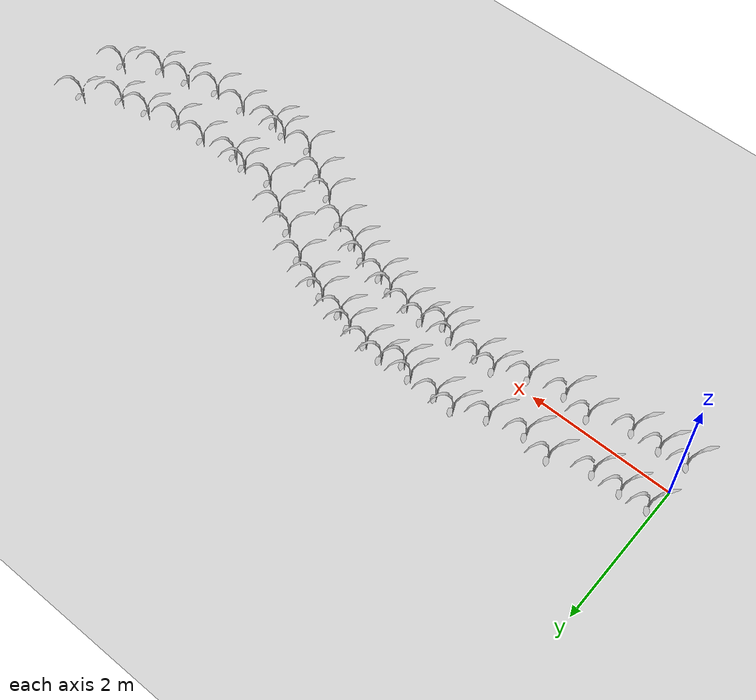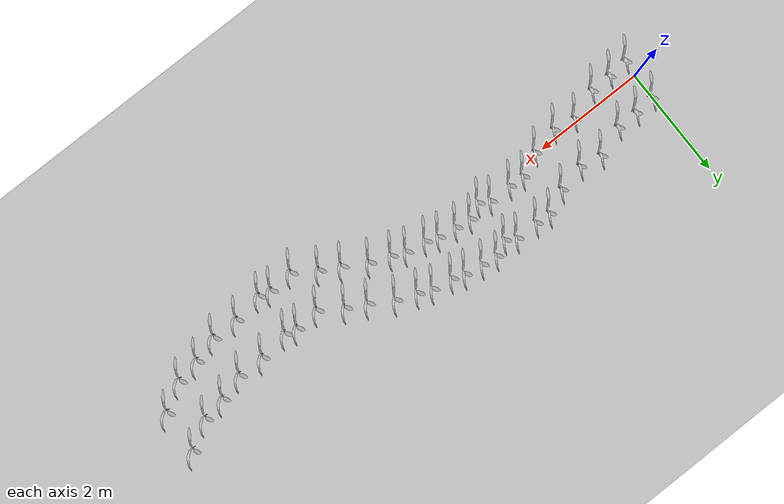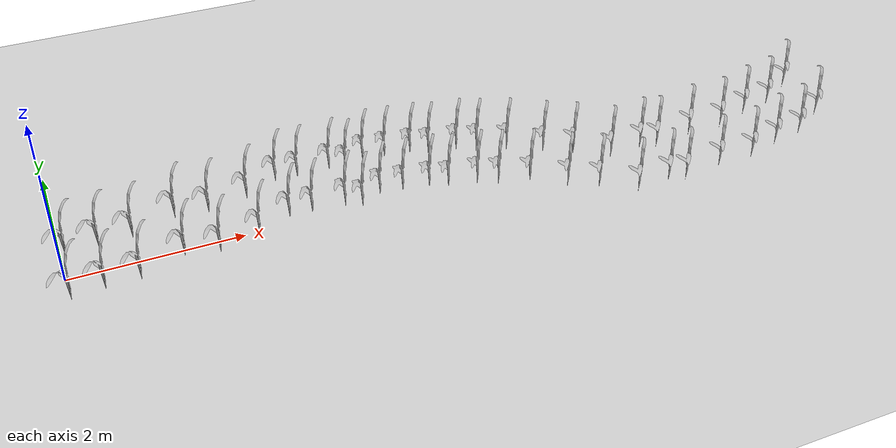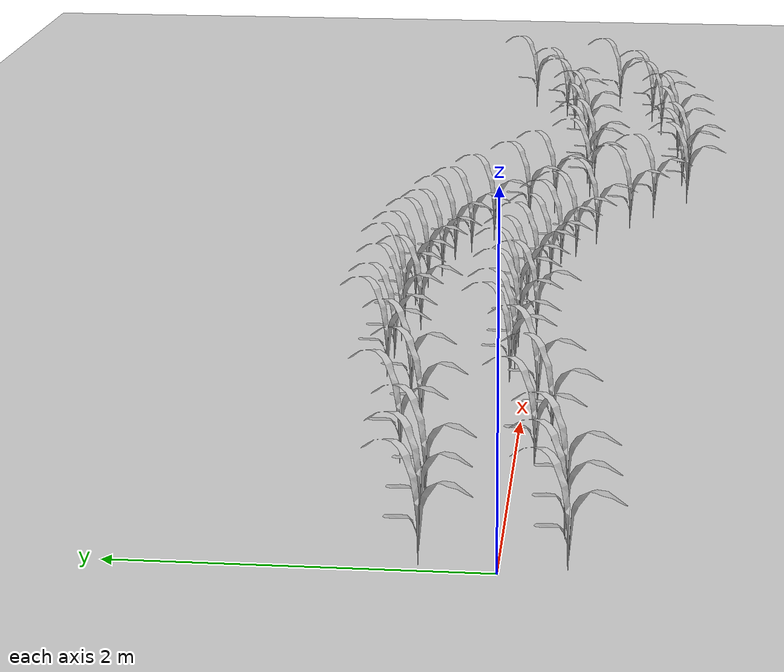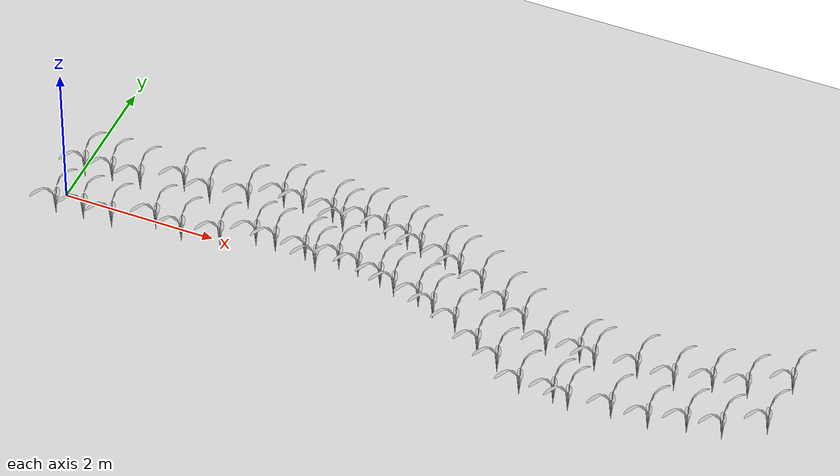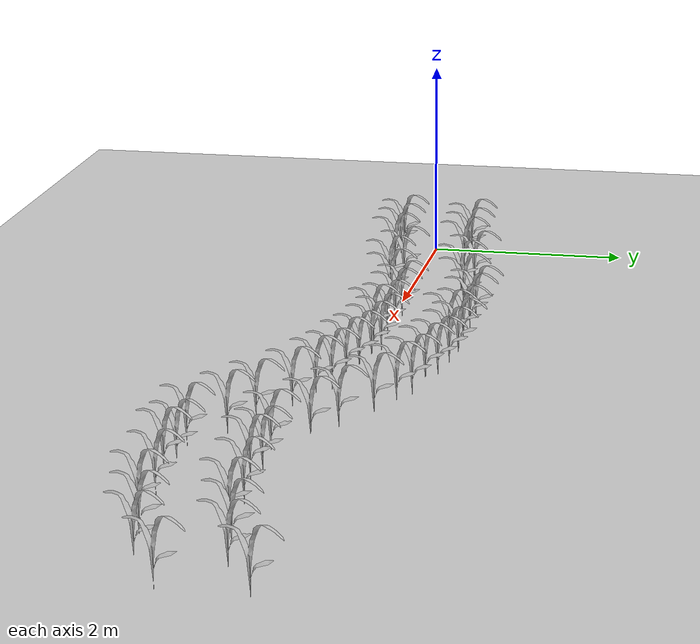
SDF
<sdf version="1.7">
 <world name="default">
  <scene><ambient>0.4 0.4 0.4 1</ambient><background>0.7 0.7 0.7 1</background><shadows>1</shadows></scene>
  <light name="sun" type="directional">
   <pose>0 0 10 0 -0 0</pose>
   <diffuse>0.8 0.8 0.8 1</diffuse>
   <specular>0.2 0.2 0.2 1</specular>
   <attenuation>
    <range>1000</range>
    <constant>0.9</constant>
    <linear>0.01</linear>
    <quadratic>0.001</quadratic>
   </attenuation>
   <direction>-0.5 0.1 -0.9</direction>
   <spot><inner_angle>0</inner_angle><outer_angle>0</outer_angle><falloff>0</falloff></spot>
  </light>
  <model name="ground_plane">
   <static>1</static>
   <link name="link">
    <collision name="collision">
     <geometry><plane><normal>0 0 1</normal><size>100 100</size></plane></geometry>
     <surface>
      <contact><collide_bitmask>65535</collide_bitmask></contact>
      <friction><ode><mu>100</mu><mu2>50</mu2></ode></friction>
     </surface>
    </collision>
    <visual name="visual">
     <cast_shadows>0</cast_shadows>
     <geometry><plane><normal>0 0 1</normal><size>100 100</size></plane></geometry>
     <material>
      <script><uri>file://media/materials/scripts/gazebo.material</uri><name>Gazebo/Grey</name></script>
     </material>
    </visual>
   </link>
  </model>
  <physics type="ode">
   <real_time_update_rate>1000</real_time_update_rate>
   <max_step_size>0.001</max_step_size>
   <real_time_factor>1</real_time_factor>
   <ode>
    <solver>
     <type>quick</type>
     <iters>150</iters>
     <precon_iters>0</precon_iters>
     <sor>1.4</sor>
     <use_dynamic_moi_rescaling>1</use_dynamic_moi_rescaling>
    </solver>
    <constraints>
     <cfm>1e-05</cfm>
     <erp>0.2</erp>
     <contact_max_correcting_vel>2000</contact_max_correcting_vel>
     <contact_surface_layer>0.01</contact_surface_layer>
    </constraints>
   </ode>
  </physics>
  <gravity>0 0 -9.8</gravity>
  <magnetic_field>6e-06 2.3e-05 -4.2e-05</magnetic_field>
  <atmosphere type="adiabatic"/>
  <spherical_coordinates>
   <surface_model>EARTH_WGS84</surface_model>
   <latitude_deg>0</latitude_deg>
   <longitude_deg>0</longitude_deg>
   <elevation>0</elevation>
   <heading_deg>0</heading_deg>
  </spherical_coordinates>
  <model name="maize_row">
   <model name="maize_02">
    <pose>-4.63661 0.027408 0 0 -0 0</pose>
    <link name="maize_02_link">
     <inertial>
      <pose>0 0 0.01 0 -0 0</pose>
      <mass>0.3</mass>
      <inertia>
       <ixx>0.00334167</ixx>
       <ixy>0</ixy>
       <ixz>0</ixz>
       <iyy>0.00334167</iyy>
       <iyz>0</iyz>
       <izz>1.66667e-05</izz>
      </inertia>
      <pose>0 0 0.1 0 -0 0</pose>
     </inertial>
     <collision name="collision">
      <pose>0 0 0.2 0 -0 0</pose>
      <geometry><box><size>0.02 0.02 0.4</size></box></geometry>
      <surface><friction><ode><mu>10</mu><mu2>10</mu2></ode></friction></surface>
     </collision>
     <visual name="visual">
      <geometry>
       <mesh><uri>model://maize_02/meshes/maize_02.dae</uri><scale>0.683166 0.683166 0.683166</scale></mesh>
      </geometry>
     </visual>
    </link>
   </model>
   <model name="maize_02_clone">
    <pose>-4.27241 0.05616 0 0 -0 0</pose>
    <link name="maize_02_link">
     <inertial>
      <pose>0 0 0.01 0 -0 0</pose>
      <mass>0.3</mass>
      <inertia>
       <ixx>0.00334167</ixx>
       <ixy>0</ixy>
       <ixz>0</ixz>
       <iyy>0.00334167</iyy>
       <iyz>0</iyz>
       <izz>1.66667e-05</izz>
      </inertia>
      <pose>0 0 0.1 0 -0 0</pose>
     </inertial>
     <collision name="collision">
      <pose>0 0 0.2 0 -0 0</pose>
      <geometry><box><size>0.02 0.02 0.4</size></box></geometry>
      <surface><friction><ode><mu>10</mu><mu2>10</mu2></ode></friction></surface>
     </collision>
     <visual name="visual">
      <geometry>
       <mesh><uri>model://maize_02/meshes/maize_02.dae</uri><scale>0.683166 0.683166 0.683166</scale></mesh>
      </geometry>
     </visual>
    </link>
   </model>
   <model name="maize_02_clone_0">
    <pose>-3.88904 0.065744 0 0 -0 0</pose>
    <link name="maize_02_link">
     <inertial>
      <pose>0 0 0.01 0 -0 0</pose>
      <mass>0.3</mass>
      <inertia>
       <ixx>0.00334167</ixx>
       <ixy>0</ixy>
       <ixz>0</ixz>
       <iyy>0.00334167</iyy>
       <iyz>0</iyz>
       <izz>1.66667e-05</izz>
      </inertia>
      <pose>0 0 0.1 0 -0 0</pose>
     </inertial>
     <collision name="collision">
      <pose>0 0 0.2 0 -0 0</pose>
      <geometry><box><size>0.02 0.02 0.4</size></box></geometry>
      <surface><friction><ode><mu>10</mu><mu2>10</mu2></ode></friction></surface>
     </collision>
     <visual name="visual">
      <geometry>
       <mesh><uri>model://maize_02/meshes/maize_02.dae</uri><scale>0.683166 0.683166 0.683166</scale></mesh>
      </geometry>
     </visual>
    </link>
   </model>
   <model name="maize_02_clone_1">
    <pose>-3.37149 0.257428 0 0 -0 0</pose>
    <link name="maize_02_link">
     <inertial>
      <pose>0 0 0.01 0 -0 0</pose>
      <mass>0.3</mass>
      <inertia>
       <ixx>0.00334167</ixx>
       <ixy>0</ixy>
       <ixz>0</ixz>
       <iyy>0.00334167</iyy>
       <iyz>0</iyz>
       <izz>1.66667e-05</izz>
      </inertia>
      <pose>0 0 0.1 0 -0 0</pose>
     </inertial>
     <collision name="collision">
      <pose>0 0 0.2 0 -0 0</pose>
      <geometry><box><size>0.02 0.02 0.4</size></box></geometry>
      <surface><friction><ode><mu>10</mu><mu2>10</mu2></ode></friction></surface>
     </collision>
     <visual name="visual">
      <geometry>
       <mesh><uri>model://maize_02/meshes/maize_02.dae</uri><scale>0.683166 0.683166 0.683166</scale></mesh>
      </geometry>
     </visual>
    </link>
   </model>
   <model name="maize_02_clone_10">
    <pose>-0.393317 0.390237 0 0 -0 0</pose>
    <link name="maize_02_link">
     <inertial>
      <pose>0 0 0.01 0 -0 0</pose>
      <mass>0.3</mass>
      <inertia>
       <ixx>0.00334167</ixx>
       <ixy>0</ixy>
       <ixz>0</ixz>
       <iyy>0.00334167</iyy>
       <iyz>0</iyz>
       <izz>1.66667e-05</izz>
      </inertia>
      <pose>0 0 0.1 0 -0 0</pose>
     </inertial>
     <collision name="collision">
      <pose>0 0 0.2 0 -0 0</pose>
      <geometry><box><size>0.02 0.02 0.4</size></box></geometry>
      <surface><friction><ode><mu>10</mu><mu2>10</mu2></ode></friction></surface>
     </collision>
     <visual name="visual">
      <geometry>
       <mesh><uri>model://maize_02/meshes/maize_02.dae</uri><scale>0.683166 0.683166 0.683166</scale></mesh>
      </geometry>
     </visual>
    </link>
   </model>
   <model name="maize_02_clone_11">
    <pose>0.410873 0.154867 0 0 -0 0</pose>
    <link name="maize_02_link">
     <inertial>
      <pose>0 0 0.01 0 -0 0</pose>
      <mass>0.3</mass>
      <inertia>
       <ixx>0.00334167</ixx>
       <ixy>0</ixy>
       <ixz>0</ixz>
       <iyy>0.00334167</iyy>
       <iyz>0</iyz>
       <izz>1.66667e-05</izz>
      </inertia>
      <pose>0 0 0.1 0 -0 0</pose>
     </inertial>
     <collision name="collision">
      <pose>0 0 0.2 0 -0 0</pose>
      <geometry><box><size>0.02 0.02 0.4</size></box></geometry>
      <surface><friction><ode><mu>10</mu><mu2>10</mu2></ode></friction></surface>
     </collision>
     <visual name="visual">
      <geometry>
       <mesh><uri>model://maize_02/meshes/maize_02.dae</uri><scale>0.683166 0.683166 0.683166</scale></mesh>
      </geometry>
     </visual>
    </link>
   </model>
   <model name="maize_02_clone_12">
    <pose>0.175502 0.252945 0 0 -0 0</pose>
    <link name="maize_02_link">
     <inertial>
      <pose>0 0 0.01 0 -0 0</pose>
      <mass>0.3</mass>
      <inertia>
       <ixx>0.00334167</ixx>
       <ixy>0</ixy>
       <ixz>0</ixz>
       <iyy>0.00334167</iyy>
       <iyz>0</iyz>
       <izz>1.66667e-05</izz>
      </inertia>
      <pose>0 0 0.1 0 -0 0</pose>
     </inertial>
     <collision name="collision">
      <pose>0 0 0.2 0 -0 0</pose>
      <geometry><box><size>0.02 0.02 0.4</size></box></geometry>
      <surface><friction><ode><mu>10</mu><mu2>10</mu2></ode></friction></surface>
     </collision>
     <visual name="visual">
      <geometry>
       <mesh><uri>model://maize_02/meshes/maize_02.dae</uri><scale>0.683166 0.683166 0.683166</scale></mesh>
      </geometry>
     </visual>
    </link>
   </model>
   <model name="maize_02_clone_13">
    <pose>0.76395 0.017569 0 0 -0 0</pose>
    <link name="maize_02_link">
     <inertial>
      <pose>0 0 0.01 0 -0 0</pose>
      <mass>0.3</mass>
      <inertia>
       <ixx>0.00334167</ixx>
       <ixy>0</ixy>
       <ixz>0</ixz>
       <iyy>0.00334167</iyy>
       <iyz>0</iyz>
       <izz>1.66667e-05</izz>
      </inertia>
      <pose>0 0 0.1 0 -0 0</pose>
     </inertial>
     <collision name="collision">
      <pose>0 0 0.2 0 -0 0</pose>
      <geometry><box><size>0.02 0.02 0.4</size></box></geometry>
      <surface><friction><ode><mu>10</mu><mu2>10</mu2></ode></friction></surface>
     </collision>
     <visual name="visual">
      <geometry>
       <mesh><uri>model://maize_02/meshes/maize_02.dae</uri><scale>0.683166 0.683166 0.683166</scale></mesh>
      </geometry>
     </visual>
    </link>
   </model>
   <model name="maize_02_clone_14">
    <pose>1.15624 -0.217806 0 0 -0 0</pose>
    <link name="maize_02_link">
     <inertial>
      <pose>0 0 0.01 0 -0 0</pose>
      <mass>0.3</mass>
      <inertia>
       <ixx>0.00334167</ixx>
       <ixy>0</ixy>
       <ixz>0</ixz>
       <iyy>0.00334167</iyy>
       <iyz>0</iyz>
       <izz>1.66667e-05</izz>
      </inertia>
      <pose>0 0 0.1 0 -0 0</pose>
     </inertial>
     <collision name="collision">
      <pose>0 0 0.2 0 -0 0</pose>
      <geometry><box><size>0.02 0.02 0.4</size></box></geometry>
      <surface><friction><ode><mu>10</mu><mu2>10</mu2></ode></friction></surface>
     </collision>
     <visual name="visual">
      <geometry>
       <mesh><uri>model://maize_02/meshes/maize_02.dae</uri><scale>0.683166 0.683166 0.683166</scale></mesh>
      </geometry>
     </visual>
    </link>
   </model>
   <model name="maize_02_clone_15">
    <pose>1.48967 -0.39434 0 0 -0 0</pose>
    <link name="maize_02_link">
     <inertial>
      <pose>0 0 0.01 0 -0 0</pose>
      <mass>0.3</mass>
      <inertia>
       <ixx>0.00334167</ixx>
       <ixy>0</ixy>
       <ixz>0</ixz>
       <iyy>0.00334167</iyy>
       <iyz>0</iyz>
       <izz>1.66667e-05</izz>
      </inertia>
      <pose>0 0 0.1 0 -0 0</pose>
     </inertial>
     <collision name="collision">
      <pose>0 0 0.2 0 -0 0</pose>
      <geometry><box><size>0.02 0.02 0.4</size></box></geometry>
      <surface><friction><ode><mu>10</mu><mu2>10</mu2></ode></friction></surface>
     </collision>
     <visual name="visual">
      <geometry>
       <mesh><uri>model://maize_02/meshes/maize_02.dae</uri><scale>0.683166 0.683166 0.683166</scale></mesh>
      </geometry>
     </visual>
    </link>
   </model>
   <model name="maize_02_clone_16">
    <pose>1.88196 -0.649333 0 0 -0 0</pose>
    <link name="maize_02_link">
     <inertial>
      <pose>0 0 0.01 0 -0 0</pose>
      <mass>0.3</mass>
      <inertia>
       <ixx>0.00334167</ixx>
       <ixy>0</ixy>
       <ixz>0</ixz>
       <iyy>0.00334167</iyy>
       <iyz>0</iyz>
       <izz>1.66667e-05</izz>
      </inertia>
      <pose>0 0 0.1 0 -0 0</pose>
     </inertial>
     <collision name="collision">
      <pose>0 0 0.2 0 -0 0</pose>
      <geometry><box><size>0.02 0.02 0.4</size></box></geometry>
      <surface><friction><ode><mu>10</mu><mu2>10</mu2></ode></friction></surface>
     </collision>
     <visual name="visual">
      <geometry>
       <mesh><uri>model://maize_02/meshes/maize_02.dae</uri><scale>0.683166 0.683166 0.683166</scale></mesh>
      </geometry>
     </visual>
    </link>
   </model>
   <model name="maize_02_clone_17">
    <pose>2.52627 -0.672048 0 0 -0 0</pose>
    <link name="maize_02_link">
     <inertial>
      <pose>0 0 0.01 0 -0 0</pose>
      <mass>0.3</mass>
      <inertia>
       <ixx>0.00334167</ixx>
       <ixy>0</ixy>
       <ixz>0</ixz>
       <iyy>0.00334167</iyy>
       <iyz>0</iyz>
       <izz>1.66667e-05</izz>
      </inertia>
      <pose>0 0 0.1 0 -0 0</pose>
     </inertial>
     <collision name="collision">
      <pose>0 0 0.2 0 -0 0</pose>
      <geometry><box><size>0.02 0.02 0.4</size></box></geometry>
      <surface><friction><ode><mu>10</mu><mu2>10</mu2></ode></friction></surface>
     </collision>
     <visual name="visual">
      <geometry>
       <mesh><uri>model://maize_02/meshes/maize_02.dae</uri><scale>0.683166 0.683166 0.683166</scale></mesh>
      </geometry>
     </visual>
    </link>
   </model>
   <model name="maize_02_clone_18">
    <pose>2.3152 -0.619273 0 0 -0 0</pose>
    <link name="maize_02_link">
     <inertial>
      <pose>0 0 0.01 0 -0 0</pose>
      <mass>0.3</mass>
      <inertia>
       <ixx>0.00334167</ixx>
       <ixy>0</ixy>
       <ixz>0</ixz>
       <iyy>0.00334167</iyy>
       <iyz>0</iyz>
       <izz>1.66667e-05</izz>
      </inertia>
      <pose>0 0 0.1 0 -0 0</pose>
     </inertial>
     <collision name="collision">
      <pose>0 0 0.2 0 -0 0</pose>
      <geometry><box><size>0.02 0.02 0.4</size></box></geometry>
      <surface><friction><ode><mu>10</mu><mu2>10</mu2></ode></friction></surface>
     </collision>
     <visual name="visual">
      <geometry>
       <mesh><uri>model://maize_02/meshes/maize_02.dae</uri><scale>0.683166 0.683166 0.683166</scale></mesh>
      </geometry>
     </visual>
    </link>
   </model>
   <model name="maize_02_clone_19">
    <pose>3.05425 -0.592874 0 0 -0 0</pose>
    <link name="maize_02_link">
     <inertial>
      <pose>0 0 0.01 0 -0 0</pose>
      <mass>0.3</mass>
      <inertia>
       <ixx>0.00334167</ixx>
       <ixy>0</ixy>
       <ixz>0</ixz>
       <iyy>0.00334167</iyy>
       <iyz>0</iyz>
       <izz>1.66667e-05</izz>
      </inertia>
      <pose>0 0 0.1 0 -0 0</pose>
     </inertial>
     <collision name="collision">
      <pose>0 0 0.2 0 -0 0</pose>
      <geometry><box><size>0.02 0.02 0.4</size></box></geometry>
      <surface><friction><ode><mu>10</mu><mu2>10</mu2></ode></friction></surface>
     </collision>
     <visual name="visual">
      <geometry>
       <mesh><uri>model://maize_02/meshes/maize_02.dae</uri><scale>0.683166 0.683166 0.683166</scale></mesh>
      </geometry>
     </visual>
    </link>
   </model>
   <model name="maize_02_clone_2">
    <pose>-2.98813 0.180754 0 0 -0 0</pose>
    <link name="maize_02_link">
     <inertial>
      <pose>0 0 0.01 0 -0 0</pose>
      <mass>0.3</mass>
      <inertia>
       <ixx>0.00334167</ixx>
       <ixy>0</ixy>
       <ixz>0</ixz>
       <iyy>0.00334167</iyy>
       <iyz>0</iyz>
       <izz>1.66667e-05</izz>
      </inertia>
      <pose>0 0 0.1 0 -0 0</pose>
     </inertial>
     <collision name="collision">
      <pose>0 0 0.2 0 -0 0</pose>
      <geometry><box><size>0.02 0.02 0.4</size></box></geometry>
      <surface><friction><ode><mu>10</mu><mu2>10</mu2></ode></friction></surface>
     </collision>
     <visual name="visual">
      <geometry>
       <mesh><uri>model://maize_02/meshes/maize_02.dae</uri><scale>0.683166 0.683166 0.683166</scale></mesh>
      </geometry>
     </visual>
    </link>
   </model>
   <model name="maize_02_clone_20">
    <pose>3.5294 -0.592874 0 0 -0 0</pose>
    <link name="maize_02_link">
     <inertial>
      <pose>0 0 0.01 0 -0 0</pose>
      <mass>0.3</mass>
      <inertia>
       <ixx>0.00334167</ixx>
       <ixy>0</ixy>
       <ixz>0</ixz>
       <iyy>0.00334167</iyy>
       <iyz>0</iyz>
       <izz>1.66667e-05</izz>
      </inertia>
      <pose>0 0 0.1 0 -0 0</pose>
     </inertial>
     <collision name="collision">
      <pose>0 0 0.2 0 -0 0</pose>
      <geometry><box><size>0.02 0.02 0.4</size></box></geometry>
      <surface><friction><ode><mu>10</mu><mu2>10</mu2></ode></friction></surface>
     </collision>
     <visual name="visual">
      <geometry>
       <mesh><uri>model://maize_02/meshes/maize_02.dae</uri><scale>0.683166 0.683166 0.683166</scale></mesh>
      </geometry>
     </visual>
    </link>
   </model>
   <model name="maize_02_clone_21">
    <pose>3.97801 -0.460902 0 0 -0 0</pose>
    <link name="maize_02_link">
     <inertial>
      <pose>0 0 0.01 0 -0 0</pose>
      <mass>0.3</mass>
      <inertia>
       <ixx>0.00334167</ixx>
       <ixy>0</ixy>
       <ixz>0</ixz>
       <iyy>0.00334167</iyy>
       <iyz>0</iyz>
       <izz>1.66667e-05</izz>
      </inertia>
      <pose>0 0 0.1 0 -0 0</pose>
     </inertial>
     <collision name="collision">
      <pose>0 0 0.2 0 -0 0</pose>
      <geometry><box><size>0.02 0.02 0.4</size></box></geometry>
      <surface><friction><ode><mu>10</mu><mu2>10</mu2></ode></friction></surface>
     </collision>
     <visual name="visual">
      <geometry>
       <mesh><uri>model://maize_02/meshes/maize_02.dae</uri><scale>0.683166 0.683166 0.683166</scale></mesh>
      </geometry>
     </visual>
    </link>
   </model>
   <model name="maize_02_clone_22">
    <pose>4.40033 -0.381713 0 0 -0 0</pose>
    <link name="maize_02_link">
     <inertial>
      <pose>0 0 0.01 0 -0 0</pose>
      <mass>0.3</mass>
      <inertia>
       <ixx>0.00334167</ixx>
       <ixy>0</ixy>
       <ixz>0</ixz>
       <iyy>0.00334167</iyy>
       <iyz>0</iyz>
       <izz>1.66667e-05</izz>
      </inertia>
      <pose>0 0 0.1 0 -0 0</pose>
     </inertial>
     <collision name="collision">
      <pose>0 0 0.2 0 -0 0</pose>
      <geometry><box><size>0.02 0.02 0.4</size></box></geometry>
      <surface><friction><ode><mu>10</mu><mu2>10</mu2></ode></friction></surface>
     </collision>
     <visual name="visual">
      <geometry>
       <mesh><uri>model://maize_02/meshes/maize_02.dae</uri><scale>0.683166 0.683166 0.683166</scale></mesh>
      </geometry>
     </visual>
    </link>
   </model>
   <model name="maize_02_clone_23">
    <pose>4.87542 -0.091378 0 0 -0 0</pose>
    <link name="maize_02_link">
     <inertial>
      <pose>0 0 0.01 0 -0 0</pose>
      <mass>0.3</mass>
      <inertia>
       <ixx>0.00334167</ixx>
       <ixy>0</ixy>
       <ixz>0</ixz>
       <iyy>0.00334167</iyy>
       <iyz>0</iyz>
       <izz>1.66667e-05</izz>
      </inertia>
      <pose>0 0 0.1 0 -0 0</pose>
     </inertial>
     <collision name="collision">
      <pose>0 0 0.2 0 -0 0</pose>
      <geometry><box><size>0.02 0.02 0.4</size></box></geometry>
      <surface><friction><ode><mu>10</mu><mu2>10</mu2></ode></friction></surface>
     </collision>
     <visual name="visual">
      <geometry>
       <mesh><uri>model://maize_02/meshes/maize_02.dae</uri><scale>0.683166 0.683166 0.683166</scale></mesh>
      </geometry>
     </visual>
    </link>
   </model>
   <model name="maize_02_clone_24">
    <pose>-0.987177 0.483854 0 0 -0 0</pose>
    <link name="maize_02_link">
     <inertial>
      <pose>0 0 0.01 0 -0 0</pose>
      <mass>0.3</mass>
      <inertia>
       <ixx>0.00334167</ixx>
       <ixy>0</ixy>
       <ixz>0</ixz>
       <iyy>0.00334167</iyy>
       <iyz>0</iyz>
       <izz>1.66667e-05</izz>
      </inertia>
      <pose>0 0 0.1 0 -0 0</pose>
     </inertial>
     <collision name="collision">
      <pose>0 0 0.2 0 -0 0</pose>
      <geometry><box><size>0.02 0.02 0.4</size></box></geometry>
      <surface><friction><ode><mu>10</mu><mu2>10</mu2></ode></friction></surface>
     </collision>
     <visual name="visual">
      <geometry>
       <mesh><uri>model://maize_02/meshes/maize_02.dae</uri><scale>0.683166 0.683166 0.683166</scale></mesh>
      </geometry>
     </visual>
    </link>
   </model>
   <model name="maize_02_clone_3">
    <pose>-2.50892 0.28618 0 0 -0 0</pose>
    <link name="maize_02_link">
     <inertial>
      <pose>0 0 0.01 0 -0 0</pose>
      <mass>0.3</mass>
      <inertia>
       <ixx>0.00334167</ixx>
       <ixy>0</ixy>
       <ixz>0</ixz>
       <iyy>0.00334167</iyy>
       <iyz>0</iyz>
       <izz>1.66667e-05</izz>
      </inertia>
      <pose>0 0 0.1 0 -0 0</pose>
     </inertial>
     <collision name="collision">
      <pose>0 0 0.2 0 -0 0</pose>
      <geometry><box><size>0.02 0.02 0.4</size></box></geometry>
      <surface><friction><ode><mu>10</mu><mu2>10</mu2></ode></friction></surface>
     </collision>
     <visual name="visual">
      <geometry>
       <mesh><uri>model://maize_02/meshes/maize_02.dae</uri><scale>0.683166 0.683166 0.683166</scale></mesh>
      </geometry>
     </visual>
    </link>
   </model>
   <model name="maize_02_clone_4">
    <pose>-1.83451 0.458469 0 0 -0 0</pose>
    <link name="maize_02_link">
     <inertial>
      <pose>0 0 0.01 0 -0 0</pose>
      <mass>0.3</mass>
      <inertia>
       <ixx>0.00334167</ixx>
       <ixy>0</ixy>
       <ixz>0</ixz>
       <iyy>0.00334167</iyy>
       <iyz>0</iyz>
       <izz>1.66667e-05</izz>
      </inertia>
      <pose>0 0 0.1 0 -0 0</pose>
     </inertial>
     <collision name="collision">
      <pose>0 0 0.2 0 -0 0</pose>
      <geometry><box><size>0.02 0.02 0.4</size></box></geometry>
      <surface><friction><ode><mu>10</mu><mu2>10</mu2></ode></friction></surface>
     </collision>
     <visual name="visual">
      <geometry>
       <mesh><uri>model://maize_02/meshes/maize_02.dae</uri><scale>0.683166 0.683166 0.683166</scale></mesh>
      </geometry>
     </visual>
    </link>
   </model>
   <model name="maize_02_clone_5">
    <pose>-1.25106 0.353746 0 0 -0 0</pose>
    <link name="maize_02_link">
     <inertial>
      <pose>0 0 0.01 0 -0 0</pose>
      <mass>0.3</mass>
      <inertia>
       <ixx>0.00334167</ixx>
       <ixy>0</ixy>
       <ixz>0</ixz>
       <iyy>0.00334167</iyy>
       <iyz>0</iyz>
       <izz>1.66667e-05</izz>
      </inertia>
      <pose>0 0 0.1 0 -0 0</pose>
     </inertial>
     <collision name="collision">
      <pose>0 0 0.2 0 -0 0</pose>
      <geometry><box><size>0.02 0.02 0.4</size></box></geometry>
      <surface><friction><ode><mu>10</mu><mu2>10</mu2></ode></friction></surface>
     </collision>
     <visual name="visual">
      <geometry>
       <mesh><uri>model://maize_02/meshes/maize_02.dae</uri><scale>0.683166 0.683166 0.683166</scale></mesh>
      </geometry>
     </visual>
    </link>
   </model>
   <model name="maize_02_clone_6">
    <pose>-1.43059 0.458469 0 0 -0 0</pose>
    <link name="maize_02_link">
     <inertial>
      <pose>0 0 0.01 0 -0 0</pose>
      <mass>0.3</mass>
      <inertia>
       <ixx>0.00334167</ixx>
       <ixy>0</ixy>
       <ixz>0</ixz>
       <iyy>0.00334167</iyy>
       <iyz>0</iyz>
       <izz>1.66667e-05</izz>
      </inertia>
      <pose>0 0 0.1 0 -0 0</pose>
     </inertial>
     <collision name="collision">
      <pose>0 0 0.2 0 -0 0</pose>
      <geometry><box><size>0.02 0.02 0.4</size></box></geometry>
      <surface><friction><ode><mu>10</mu><mu2>10</mu2></ode></friction></surface>
     </collision>
     <visual name="visual">
      <geometry>
       <mesh><uri>model://maize_02/meshes/maize_02.dae</uri><scale>0.683166 0.683166 0.683166</scale></mesh>
      </geometry>
     </visual>
    </link>
   </model>
   <model name="maize_02_clone_7">
    <pose>-2.10378 0.473427 0 0 -0 0</pose>
    <link name="maize_02_link">
     <inertial>
      <pose>0 0 0.01 0 -0 0</pose>
      <mass>0.3</mass>
      <inertia>
       <ixx>0.00334167</ixx>
       <ixy>0</ixy>
       <ixz>0</ixz>
       <iyy>0.00334167</iyy>
       <iyz>0</iyz>
       <izz>1.66667e-05</izz>
      </inertia>
      <pose>0 0 0.1 0 -0 0</pose>
     </inertial>
     <collision name="collision">
      <pose>0 0 0.2 0 -0 0</pose>
      <geometry><box><size>0.02 0.02 0.4</size></box></geometry>
      <surface><friction><ode><mu>10</mu><mu2>10</mu2></ode></friction></surface>
     </collision>
     <visual name="visual">
      <geometry>
       <mesh><uri>model://maize_02/meshes/maize_02.dae</uri><scale>0.683166 0.683166 0.683166</scale></mesh>
      </geometry>
     </visual>
    </link>
   </model>
   <model name="maize_02_clone_8">
    <pose>-0.712516 0.443508 0 0 -0 0</pose>
    <link name="maize_02_link">
     <inertial>
      <pose>0 0 0.01 0 -0 0</pose>
      <mass>0.3</mass>
      <inertia>
       <ixx>0.00334167</ixx>
       <ixy>0</ixy>
       <ixz>0</ixz>
       <iyy>0.00334167</iyy>
       <iyz>0</iyz>
       <izz>1.66667e-05</izz>
      </inertia>
      <pose>0 0 0.1 0 -0 0</pose>
     </inertial>
     <collision name="collision">
      <pose>0 0 0.2 0 -0 0</pose>
      <geometry><box><size>0.02 0.02 0.4</size></box></geometry>
      <surface><friction><ode><mu>10</mu><mu2>10</mu2></ode></friction></surface>
     </collision>
     <visual name="visual">
      <geometry>
       <mesh><uri>model://maize_02/meshes/maize_02.dae</uri><scale>0.683166 0.683166 0.683166</scale></mesh>
      </geometry>
     </visual>
    </link>
   </model>
   <model name="maize_02_clone_9">
    <pose>-0.177553 0.311777 0 0 -0 0</pose>
    <link name="maize_02_link">
     <inertial>
      <pose>0 0 0.01 0 -0 0</pose>
      <mass>0.3</mass>
      <inertia>
       <ixx>0.00334167</ixx>
       <ixy>0</ixy>
       <ixz>0</ixz>
       <iyy>0.00334167</iyy>
       <iyz>0</iyz>
       <izz>1.66667e-05</izz>
      </inertia>
      <pose>0 0 0.1 0 -0 0</pose>
     </inertial>
     <collision name="collision">
      <pose>0 0 0.2 0 -0 0</pose>
      <geometry><box><size>0.02 0.02 0.4</size></box></geometry>
      <surface><friction><ode><mu>10</mu><mu2>10</mu2></ode></friction></surface>
     </collision>
     <visual name="visual">
      <geometry>
       <mesh><uri>model://maize_02/meshes/maize_02.dae</uri><scale>0.683166 0.683166 0.683166</scale></mesh>
      </geometry>
     </visual>
    </link>
   </model>
   <static>0</static>
   <pose>4.70004 0.375 1.1e-05 0 -2e-06 0</pose>
  </model>
  <model name="maize_row_clone">
   <model name="maize_02">
    <pose>-4.63661 0.027408 0 0 -0 0</pose>
    <link name="maize_02_link">
     <inertial>
      <pose>0 0 0.01 0 -0 0</pose>
      <mass>0.3</mass>
      <inertia>
       <ixx>0.00334167</ixx>
       <ixy>0</ixy>
       <ixz>0</ixz>
       <iyy>0.00334167</iyy>
       <iyz>0</iyz>
       <izz>1.66667e-05</izz>
      </inertia>
      <pose>0 0 0.1 0 -0 0</pose>
     </inertial>
     <collision name="collision">
      <pose>0 0 0.2 0 -0 0</pose>
      <geometry><box><size>0.02 0.02 0.4</size></box></geometry>
      <surface><friction><ode><mu>10</mu><mu2>10</mu2></ode></friction></surface>
     </collision>
     <visual name="visual">
      <geometry>
       <mesh><uri>model://maize_02/meshes/maize_02.dae</uri><scale>0.683166 0.683166 0.683166</scale></mesh>
      </geometry>
     </visual>
    </link>
   </model>
   <model name="maize_02_clone">
    <pose>-4.27241 0.05616 0 0 -0 0</pose>
    <link name="maize_02_link">
     <inertial>
      <pose>0 0 0.01 0 -0 0</pose>
      <mass>0.3</mass>
      <inertia>
       <ixx>0.00334167</ixx>
       <ixy>0</ixy>
       <ixz>0</ixz>
       <iyy>0.00334167</iyy>
       <iyz>0</iyz>
       <izz>1.66667e-05</izz>
      </inertia>
      <pose>0 0 0.1 0 -0 0</pose>
     </inertial>
     <collision name="collision">
      <pose>0 0 0.2 0 -0 0</pose>
      <geometry><box><size>0.02 0.02 0.4</size></box></geometry>
      <surface><friction><ode><mu>10</mu><mu2>10</mu2></ode></friction></surface>
     </collision>
     <visual name="visual">
      <geometry>
       <mesh><uri>model://maize_02/meshes/maize_02.dae</uri><scale>0.683166 0.683166 0.683166</scale></mesh>
      </geometry>
     </visual>
    </link>
   </model>
   <model name="maize_02_clone_0">
    <pose>-3.88904 0.065744 0 0 -0 0</pose>
    <link name="maize_02_link">
     <inertial>
      <pose>0 0 0.01 0 -0 0</pose>
      <mass>0.3</mass>
      <inertia>
       <ixx>0.00334167</ixx>
       <ixy>0</ixy>
       <ixz>0</ixz>
       <iyy>0.00334167</iyy>
       <iyz>0</iyz>
       <izz>1.66667e-05</izz>
      </inertia>
      <pose>0 0 0.1 0 -0 0</pose>
     </inertial>
     <collision name="collision">
      <pose>0 0 0.2 0 -0 0</pose>
      <geometry><box><size>0.02 0.02 0.4</size></box></geometry>
      <surface><friction><ode><mu>10</mu><mu2>10</mu2></ode></friction></surface>
     </collision>
     <visual name="visual">
      <geometry>
       <mesh><uri>model://maize_02/meshes/maize_02.dae</uri><scale>0.683166 0.683166 0.683166</scale></mesh>
      </geometry>
     </visual>
    </link>
   </model>
   <model name="maize_02_clone_1">
    <pose>-3.37149 0.257428 0 0 -0 0</pose>
    <link name="maize_02_link">
     <inertial>
      <pose>0 0 0.01 0 -0 0</pose>
      <mass>0.3</mass>
      <inertia>
       <ixx>0.00334167</ixx>
       <ixy>0</ixy>
       <ixz>0</ixz>
       <iyy>0.00334167</iyy>
       <iyz>0</iyz>
       <izz>1.66667e-05</izz>
      </inertia>
      <pose>0 0 0.1 0 -0 0</pose>
     </inertial>
     <collision name="collision">
      <pose>0 0 0.2 0 -0 0</pose>
      <geometry><box><size>0.02 0.02 0.4</size></box></geometry>
      <surface><friction><ode><mu>10</mu><mu2>10</mu2></ode></friction></surface>
     </collision>
     <visual name="visual">
      <geometry>
       <mesh><uri>model://maize_02/meshes/maize_02.dae</uri><scale>0.683166 0.683166 0.683166</scale></mesh>
      </geometry>
     </visual>
    </link>
   </model>
   <model name="maize_02_clone_10">
    <pose>-0.393317 0.390237 0 0 -0 0</pose>
    <link name="maize_02_link">
     <inertial>
      <pose>0 0 0.01 0 -0 0</pose>
      <mass>0.3</mass>
      <inertia>
       <ixx>0.00334167</ixx>
       <ixy>0</ixy>
       <ixz>0</ixz>
       <iyy>0.00334167</iyy>
       <iyz>0</iyz>
       <izz>1.66667e-05</izz>
      </inertia>
      <pose>0 0 0.1 0 -0 0</pose>
     </inertial>
     <collision name="collision">
      <pose>0 0 0.2 0 -0 0</pose>
      <geometry><box><size>0.02 0.02 0.4</size></box></geometry>
      <surface><friction><ode><mu>10</mu><mu2>10</mu2></ode></friction></surface>
     </collision>
     <visual name="visual">
      <geometry>
       <mesh><uri>model://maize_02/meshes/maize_02.dae</uri><scale>0.683166 0.683166 0.683166</scale></mesh>
      </geometry>
     </visual>
    </link>
   </model>
   <model name="maize_02_clone_11">
    <pose>0.410873 0.154867 0 0 -0 0</pose>
    <link name="maize_02_link">
     <inertial>
      <pose>0 0 0.01 0 -0 0</pose>
      <mass>0.3</mass>
      <inertia>
       <ixx>0.00334167</ixx>
       <ixy>0</ixy>
       <ixz>0</ixz>
       <iyy>0.00334167</iyy>
       <iyz>0</iyz>
       <izz>1.66667e-05</izz>
      </inertia>
      <pose>0 0 0.1 0 -0 0</pose>
     </inertial>
     <collision name="collision">
      <pose>0 0 0.2 0 -0 0</pose>
      <geometry><box><size>0.02 0.02 0.4</size></box></geometry>
      <surface><friction><ode><mu>10</mu><mu2>10</mu2></ode></friction></surface>
     </collision>
     <visual name="visual">
      <geometry>
       <mesh><uri>model://maize_02/meshes/maize_02.dae</uri><scale>0.683166 0.683166 0.683166</scale></mesh>
      </geometry>
     </visual>
    </link>
   </model>
   <model name="maize_02_clone_12">
    <pose>0.175502 0.252945 0 0 -0 0</pose>
    <link name="maize_02_link">
     <inertial>
      <pose>0 0 0.01 0 -0 0</pose>
      <mass>0.3</mass>
      <inertia>
       <ixx>0.00334167</ixx>
       <ixy>0</ixy>
       <ixz>0</ixz>
       <iyy>0.00334167</iyy>
       <iyz>0</iyz>
       <izz>1.66667e-05</izz>
      </inertia>
      <pose>0 0 0.1 0 -0 0</pose>
     </inertial>
     <collision name="collision">
      <pose>0 0 0.2 0 -0 0</pose>
      <geometry><box><size>0.02 0.02 0.4</size></box></geometry>
      <surface><friction><ode><mu>10</mu><mu2>10</mu2></ode></friction></surface>
     </collision>
     <visual name="visual">
      <geometry>
       <mesh><uri>model://maize_02/meshes/maize_02.dae</uri><scale>0.683166 0.683166 0.683166</scale></mesh>
      </geometry>
     </visual>
    </link>
   </model>
   <model name="maize_02_clone_13">
    <pose>0.76395 0.017569 0 0 -0 0</pose>
    <link name="maize_02_link">
     <inertial>
      <pose>0 0 0.01 0 -0 0</pose>
      <mass>0.3</mass>
      <inertia>
       <ixx>0.00334167</ixx>
       <ixy>0</ixy>
       <ixz>0</ixz>
       <iyy>0.00334167</iyy>
       <iyz>0</iyz>
       <izz>1.66667e-05</izz>
      </inertia>
      <pose>0 0 0.1 0 -0 0</pose>
     </inertial>
     <collision name="collision">
      <pose>0 0 0.2 0 -0 0</pose>
      <geometry><box><size>0.02 0.02 0.4</size></box></geometry>
      <surface><friction><ode><mu>10</mu><mu2>10</mu2></ode></friction></surface>
     </collision>
     <visual name="visual">
      <geometry>
       <mesh><uri>model://maize_02/meshes/maize_02.dae</uri><scale>0.683166 0.683166 0.683166</scale></mesh>
      </geometry>
     </visual>
    </link>
   </model>
   <model name="maize_02_clone_14">
    <pose>1.15624 -0.217806 0 0 -0 0</pose>
    <link name="maize_02_link">
     <inertial>
      <pose>0 0 0.01 0 -0 0</pose>
      <mass>0.3</mass>
      <inertia>
       <ixx>0.00334167</ixx>
       <ixy>0</ixy>
       <ixz>0</ixz>
       <iyy>0.00334167</iyy>
       <iyz>0</iyz>
       <izz>1.66667e-05</izz>
      </inertia>
      <pose>0 0 0.1 0 -0 0</pose>
     </inertial>
     <collision name="collision">
      <pose>0 0 0.2 0 -0 0</pose>
      <geometry><box><size>0.02 0.02 0.4</size></box></geometry>
      <surface><friction><ode><mu>10</mu><mu2>10</mu2></ode></friction></surface>
     </collision>
     <visual name="visual">
      <geometry>
       <mesh><uri>model://maize_02/meshes/maize_02.dae</uri><scale>0.683166 0.683166 0.683166</scale></mesh>
      </geometry>
     </visual>
    </link>
   </model>
   <model name="maize_02_clone_15">
    <pose>1.48967 -0.39434 0 0 -0 0</pose>
    <link name="maize_02_link">
     <inertial>
      <pose>0 0 0.01 0 -0 0</pose>
      <mass>0.3</mass>
      <inertia>
       <ixx>0.00334167</ixx>
       <ixy>0</ixy>
       <ixz>0</ixz>
       <iyy>0.00334167</iyy>
       <iyz>0</iyz>
       <izz>1.66667e-05</izz>
      </inertia>
      <pose>0 0 0.1 0 -0 0</pose>
     </inertial>
     <collision name="collision">
      <pose>0 0 0.2 0 -0 0</pose>
      <geometry><box><size>0.02 0.02 0.4</size></box></geometry>
      <surface><friction><ode><mu>10</mu><mu2>10</mu2></ode></friction></surface>
     </collision>
     <visual name="visual">
      <geometry>
       <mesh><uri>model://maize_02/meshes/maize_02.dae</uri><scale>0.683166 0.683166 0.683166</scale></mesh>
      </geometry>
     </visual>
    </link>
   </model>
   <model name="maize_02_clone_16">
    <pose>1.88196 -0.649333 0 0 -0 0</pose>
    <link name="maize_02_link">
     <inertial>
      <pose>0 0 0.01 0 -0 0</pose>
      <mass>0.3</mass>
      <inertia>
       <ixx>0.00334167</ixx>
       <ixy>0</ixy>
       <ixz>0</ixz>
       <iyy>0.00334167</iyy>
       <iyz>0</iyz>
       <izz>1.66667e-05</izz>
      </inertia>
      <pose>0 0 0.1 0 -0 0</pose>
     </inertial>
     <collision name="collision">
      <pose>0 0 0.2 0 -0 0</pose>
      <geometry><box><size>0.02 0.02 0.4</size></box></geometry>
      <surface><friction><ode><mu>10</mu><mu2>10</mu2></ode></friction></surface>
     </collision>
     <visual name="visual">
      <geometry>
       <mesh><uri>model://maize_02/meshes/maize_02.dae</uri><scale>0.683166 0.683166 0.683166</scale></mesh>
      </geometry>
     </visual>
    </link>
   </model>
   <model name="maize_02_clone_17">
    <pose>2.52627 -0.672048 0 0 -0 0</pose>
    <link name="maize_02_link">
     <inertial>
      <pose>0 0 0.01 0 -0 0</pose>
      <mass>0.3</mass>
      <inertia>
       <ixx>0.00334167</ixx>
       <ixy>0</ixy>
       <ixz>0</ixz>
       <iyy>0.00334167</iyy>
       <iyz>0</iyz>
       <izz>1.66667e-05</izz>
      </inertia>
      <pose>0 0 0.1 0 -0 0</pose>
     </inertial>
     <collision name="collision">
      <pose>0 0 0.2 0 -0 0</pose>
      <geometry><box><size>0.02 0.02 0.4</size></box></geometry>
      <surface><friction><ode><mu>10</mu><mu2>10</mu2></ode></friction></surface>
     </collision>
     <visual name="visual">
      <geometry>
       <mesh><uri>model://maize_02/meshes/maize_02.dae</uri><scale>0.683166 0.683166 0.683166</scale></mesh>
      </geometry>
     </visual>
    </link>
   </model>
   <model name="maize_02_clone_18">
    <pose>2.3152 -0.619273 0 0 -0 0</pose>
    <link name="maize_02_link">
     <inertial>
      <pose>0 0 0.01 0 -0 0</pose>
      <mass>0.3</mass>
      <inertia>
       <ixx>0.00334167</ixx>
       <ixy>0</ixy>
       <ixz>0</ixz>
       <iyy>0.00334167</iyy>
       <iyz>0</iyz>
       <izz>1.66667e-05</izz>
      </inertia>
      <pose>0 0 0.1 0 -0 0</pose>
     </inertial>
     <collision name="collision">
      <pose>0 0 0.2 0 -0 0</pose>
      <geometry><box><size>0.02 0.02 0.4</size></box></geometry>
      <surface><friction><ode><mu>10</mu><mu2>10</mu2></ode></friction></surface>
     </collision>
     <visual name="visual">
      <geometry>
       <mesh><uri>model://maize_02/meshes/maize_02.dae</uri><scale>0.683166 0.683166 0.683166</scale></mesh>
      </geometry>
     </visual>
    </link>
   </model>
   <model name="maize_02_clone_19">
    <pose>3.05425 -0.592874 0 0 -0 0</pose>
    <link name="maize_02_link">
     <inertial>
      <pose>0 0 0.01 0 -0 0</pose>
      <mass>0.3</mass>
      <inertia>
       <ixx>0.00334167</ixx>
       <ixy>0</ixy>
       <ixz>0</ixz>
       <iyy>0.00334167</iyy>
       <iyz>0</iyz>
       <izz>1.66667e-05</izz>
      </inertia>
      <pose>0 0 0.1 0 -0 0</pose>
     </inertial>
     <collision name="collision">
      <pose>0 0 0.2 0 -0 0</pose>
      <geometry><box><size>0.02 0.02 0.4</size></box></geometry>
      <surface><friction><ode><mu>10</mu><mu2>10</mu2></ode></friction></surface>
     </collision>
     <visual name="visual">
      <geometry>
       <mesh><uri>model://maize_02/meshes/maize_02.dae</uri><scale>0.683166 0.683166 0.683166</scale></mesh>
      </geometry>
     </visual>
    </link>
   </model>
   <model name="maize_02_clone_2">
    <pose>-2.98813 0.180754 0 0 -0 0</pose>
    <link name="maize_02_link">
     <inertial>
      <pose>0 0 0.01 0 -0 0</pose>
      <mass>0.3</mass>
      <inertia>
       <ixx>0.00334167</ixx>
       <ixy>0</ixy>
       <ixz>0</ixz>
       <iyy>0.00334167</iyy>
       <iyz>0</iyz>
       <izz>1.66667e-05</izz>
      </inertia>
      <pose>0 0 0.1 0 -0 0</pose>
     </inertial>
     <collision name="collision">
      <pose>0 0 0.2 0 -0 0</pose>
      <geometry><box><size>0.02 0.02 0.4</size></box></geometry>
      <surface><friction><ode><mu>10</mu><mu2>10</mu2></ode></friction></surface>
     </collision>
     <visual name="visual">
      <geometry>
       <mesh><uri>model://maize_02/meshes/maize_02.dae</uri><scale>0.683166 0.683166 0.683166</scale></mesh>
      </geometry>
     </visual>
    </link>
   </model>
   <model name="maize_02_clone_20">
    <pose>3.5294 -0.592874 0 0 -0 0</pose>
    <link name="maize_02_link">
     <inertial>
      <pose>0 0 0.01 0 -0 0</pose>
      <mass>0.3</mass>
      <inertia>
       <ixx>0.00334167</ixx>
       <ixy>0</ixy>
       <ixz>0</ixz>
       <iyy>0.00334167</iyy>
       <iyz>0</iyz>
       <izz>1.66667e-05</izz>
      </inertia>
      <pose>0 0 0.1 0 -0 0</pose>
     </inertial>
     <collision name="collision">
      <pose>0 0 0.2 0 -0 0</pose>
      <geometry><box><size>0.02 0.02 0.4</size></box></geometry>
      <surface><friction><ode><mu>10</mu><mu2>10</mu2></ode></friction></surface>
     </collision>
     <visual name="visual">
      <geometry>
       <mesh><uri>model://maize_02/meshes/maize_02.dae</uri><scale>0.683166 0.683166 0.683166</scale></mesh>
      </geometry>
     </visual>
    </link>
   </model>
   <model name="maize_02_clone_21">
    <pose>3.97801 -0.460902 0 0 -0 0</pose>
    <link name="maize_02_link">
     <inertial>
      <pose>0 0 0.01 0 -0 0</pose>
      <mass>0.3</mass>
      <inertia>
       <ixx>0.00334167</ixx>
       <ixy>0</ixy>
       <ixz>0</ixz>
       <iyy>0.00334167</iyy>
       <iyz>0</iyz>
       <izz>1.66667e-05</izz>
      </inertia>
      <pose>0 0 0.1 0 -0 0</pose>
     </inertial>
     <collision name="collision">
      <pose>0 0 0.2 0 -0 0</pose>
      <geometry><box><size>0.02 0.02 0.4</size></box></geometry>
      <surface><friction><ode><mu>10</mu><mu2>10</mu2></ode></friction></surface>
     </collision>
     <visual name="visual">
      <geometry>
       <mesh><uri>model://maize_02/meshes/maize_02.dae</uri><scale>0.683166 0.683166 0.683166</scale></mesh>
      </geometry>
     </visual>
    </link>
   </model>
   <model name="maize_02_clone_22">
    <pose>4.40033 -0.381713 0 0 -0 0</pose>
    <link name="maize_02_link">
     <inertial>
      <pose>0 0 0.01 0 -0 0</pose>
      <mass>0.3</mass>
      <inertia>
       <ixx>0.00334167</ixx>
       <ixy>0</ixy>
       <ixz>0</ixz>
       <iyy>0.00334167</iyy>
       <iyz>0</iyz>
       <izz>1.66667e-05</izz>
      </inertia>
      <pose>0 0 0.1 0 -0 0</pose>
     </inertial>
     <collision name="collision">
      <pose>0 0 0.2 0 -0 0</pose>
      <geometry><box><size>0.02 0.02 0.4</size></box></geometry>
      <surface><friction><ode><mu>10</mu><mu2>10</mu2></ode></friction></surface>
     </collision>
     <visual name="visual">
      <geometry>
       <mesh><uri>model://maize_02/meshes/maize_02.dae</uri><scale>0.683166 0.683166 0.683166</scale></mesh>
      </geometry>
     </visual>
    </link>
   </model>
   <model name="maize_02_clone_23">
    <pose>4.87542 -0.091378 0 0 -0 0</pose>
    <link name="maize_02_link">
     <inertial>
      <pose>0 0 0.01 0 -0 0</pose>
      <mass>0.3</mass>
      <inertia>
       <ixx>0.00334167</ixx>
       <ixy>0</ixy>
       <ixz>0</ixz>
       <iyy>0.00334167</iyy>
       <iyz>0</iyz>
       <izz>1.66667e-05</izz>
      </inertia>
      <pose>0 0 0.1 0 -0 0</pose>
     </inertial>
     <collision name="collision">
      <pose>0 0 0.2 0 -0 0</pose>
      <geometry><box><size>0.02 0.02 0.4</size></box></geometry>
      <surface><friction><ode><mu>10</mu><mu2>10</mu2></ode></friction></surface>
     </collision>
     <visual name="visual">
      <geometry>
       <mesh><uri>model://maize_02/meshes/maize_02.dae</uri><scale>0.683166 0.683166 0.683166</scale></mesh>
      </geometry>
     </visual>
    </link>
   </model>
   <model name="maize_02_clone_24">
    <pose>-0.987177 0.483854 0 0 -0 0</pose>
    <link name="maize_02_link">
     <inertial>
      <pose>0 0 0.01 0 -0 0</pose>
      <mass>0.3</mass>
      <inertia>
       <ixx>0.00334167</ixx>
       <ixy>0</ixy>
       <ixz>0</ixz>
       <iyy>0.00334167</iyy>
       <iyz>0</iyz>
       <izz>1.66667e-05</izz>
      </inertia>
      <pose>0 0 0.1 0 -0 0</pose>
     </inertial>
     <collision name="collision">
      <pose>0 0 0.2 0 -0 0</pose>
      <geometry><box><size>0.02 0.02 0.4</size></box></geometry>
      <surface><friction><ode><mu>10</mu><mu2>10</mu2></ode></friction></surface>
     </collision>
     <visual name="visual">
      <geometry>
       <mesh><uri>model://maize_02/meshes/maize_02.dae</uri><scale>0.683166 0.683166 0.683166</scale></mesh>
      </geometry>
     </visual>
    </link>
   </model>
   <model name="maize_02_clone_3">
    <pose>-2.50892 0.28618 0 0 -0 0</pose>
    <link name="maize_02_link">
     <inertial>
      <pose>0 0 0.01 0 -0 0</pose>
      <mass>0.3</mass>
      <inertia>
       <ixx>0.00334167</ixx>
       <ixy>0</ixy>
       <ixz>0</ixz>
       <iyy>0.00334167</iyy>
       <iyz>0</iyz>
       <izz>1.66667e-05</izz>
      </inertia>
      <pose>0 0 0.1 0 -0 0</pose>
     </inertial>
     <collision name="collision">
      <pose>0 0 0.2 0 -0 0</pose>
      <geometry><box><size>0.02 0.02 0.4</size></box></geometry>
      <surface><friction><ode><mu>10</mu><mu2>10</mu2></ode></friction></surface>
     </collision>
     <visual name="visual">
      <geometry>
       <mesh><uri>model://maize_02/meshes/maize_02.dae</uri><scale>0.683166 0.683166 0.683166</scale></mesh>
      </geometry>
     </visual>
    </link>
   </model>
   <model name="maize_02_clone_4">
    <pose>-1.83451 0.458469 0 0 -0 0</pose>
    <link name="maize_02_link">
     <inertial>
      <pose>0 0 0.01 0 -0 0</pose>
      <mass>0.3</mass>
      <inertia>
       <ixx>0.00334167</ixx>
       <ixy>0</ixy>
       <ixz>0</ixz>
       <iyy>0.00334167</iyy>
       <iyz>0</iyz>
       <izz>1.66667e-05</izz>
      </inertia>
      <pose>0 0 0.1 0 -0 0</pose>
     </inertial>
     <collision name="collision">
      <pose>0 0 0.2 0 -0 0</pose>
      <geometry><box><size>0.02 0.02 0.4</size></box></geometry>
      <surface><friction><ode><mu>10</mu><mu2>10</mu2></ode></friction></surface>
     </collision>
     <visual name="visual">
      <geometry>
       <mesh><uri>model://maize_02/meshes/maize_02.dae</uri><scale>0.683166 0.683166 0.683166</scale></mesh>
      </geometry>
     </visual>
    </link>
   </model>
   <model name="maize_02_clone_5">
    <pose>-1.25106 0.353746 0 0 -0 0</pose>
    <link name="maize_02_link">
     <inertial>
      <pose>0 0 0.01 0 -0 0</pose>
      <mass>0.3</mass>
      <inertia>
       <ixx>0.00334167</ixx>
       <ixy>0</ixy>
       <ixz>0</ixz>
       <iyy>0.00334167</iyy>
       <iyz>0</iyz>
       <izz>1.66667e-05</izz>
      </inertia>
      <pose>0 0 0.1 0 -0 0</pose>
     </inertial>
     <collision name="collision">
      <pose>0 0 0.2 0 -0 0</pose>
      <geometry><box><size>0.02 0.02 0.4</size></box></geometry>
      <surface><friction><ode><mu>10</mu><mu2>10</mu2></ode></friction></surface>
     </collision>
     <visual name="visual">
      <geometry>
       <mesh><uri>model://maize_02/meshes/maize_02.dae</uri><scale>0.683166 0.683166 0.683166</scale></mesh>
      </geometry>
     </visual>
    </link>
   </model>
   <model name="maize_02_clone_6">
    <pose>-1.43059 0.458469 0 0 -0 0</pose>
    <link name="maize_02_link">
     <inertial>
      <pose>0 0 0.01 0 -0 0</pose>
      <mass>0.3</mass>
      <inertia>
       <ixx>0.00334167</ixx>
       <ixy>0</ixy>
       <ixz>0</ixz>
       <iyy>0.00334167</iyy>
       <iyz>0</iyz>
       <izz>1.66667e-05</izz>
      </inertia>
      <pose>0 0 0.1 0 -0 0</pose>
     </inertial>
     <collision name="collision">
      <pose>0 0 0.2 0 -0 0</pose>
      <geometry><box><size>0.02 0.02 0.4</size></box></geometry>
      <surface><friction><ode><mu>10</mu><mu2>10</mu2></ode></friction></surface>
     </collision>
     <visual name="visual">
      <geometry>
       <mesh><uri>model://maize_02/meshes/maize_02.dae</uri><scale>0.683166 0.683166 0.683166</scale></mesh>
      </geometry>
     </visual>
    </link>
   </model>
   <model name="maize_02_clone_7">
    <pose>-2.10378 0.473427 0 0 -0 0</pose>
    <link name="maize_02_link">
     <inertial>
      <pose>0 0 0.01 0 -0 0</pose>
      <mass>0.3</mass>
      <inertia>
       <ixx>0.00334167</ixx>
       <ixy>0</ixy>
       <ixz>0</ixz>
       <iyy>0.00334167</iyy>
       <iyz>0</iyz>
       <izz>1.66667e-05</izz>
      </inertia>
      <pose>0 0 0.1 0 -0 0</pose>
     </inertial>
     <collision name="collision">
      <pose>0 0 0.2 0 -0 0</pose>
      <geometry><box><size>0.02 0.02 0.4</size></box></geometry>
      <surface><friction><ode><mu>10</mu><mu2>10</mu2></ode></friction></surface>
     </collision>
     <visual name="visual">
      <geometry>
       <mesh><uri>model://maize_02/meshes/maize_02.dae</uri><scale>0.683166 0.683166 0.683166</scale></mesh>
      </geometry>
     </visual>
    </link>
   </model>
   <model name="maize_02_clone_8">
    <pose>-0.712516 0.443508 0 0 -0 0</pose>
    <link name="maize_02_link">
     <inertial>
      <pose>0 0 0.01 0 -0 0</pose>
      <mass>0.3</mass>
      <inertia>
       <ixx>0.00334167</ixx>
       <ixy>0</ixy>
       <ixz>0</ixz>
       <iyy>0.00334167</iyy>
       <iyz>0</iyz>
       <izz>1.66667e-05</izz>
      </inertia>
      <pose>0 0 0.1 0 -0 0</pose>
     </inertial>
     <collision name="collision">
      <pose>0 0 0.2 0 -0 0</pose>
      <geometry><box><size>0.02 0.02 0.4</size></box></geometry>
      <surface><friction><ode><mu>10</mu><mu2>10</mu2></ode></friction></surface>
     </collision>
     <visual name="visual">
      <geometry>
       <mesh><uri>model://maize_02/meshes/maize_02.dae</uri><scale>0.683166 0.683166 0.683166</scale></mesh>
      </geometry>
     </visual>
    </link>
   </model>
   <model name="maize_02_clone_9">
    <pose>-0.177553 0.311777 0 0 -0 0</pose>
    <link name="maize_02_link">
     <inertial>
      <pose>0 0 0.01 0 -0 0</pose>
      <mass>0.3</mass>
      <inertia>
       <ixx>0.00334167</ixx>
       <ixy>0</ixy>
       <ixz>0</ixz>
       <iyy>0.00334167</iyy>
       <iyz>0</iyz>
       <izz>1.66667e-05</izz>
      </inertia>
      <pose>0 0 0.1 0 -0 0</pose>
     </inertial>
     <collision name="collision">
      <pose>0 0 0.2 0 -0 0</pose>
      <geometry><box><size>0.02 0.02 0.4</size></box></geometry>
      <surface><friction><ode><mu>10</mu><mu2>10</mu2></ode></friction></surface>
     </collision>
     <visual name="visual">
      <geometry>
       <mesh><uri>model://maize_02/meshes/maize_02.dae</uri><scale>0.683166 0.683166 0.683166</scale></mesh>
      </geometry>
     </visual>
    </link>
   </model>
   <static>0</static>
   <pose>4.65738 -0.375 -0 4e-06 -0 0</pose>
  </model>
 </world>
</sdf>
